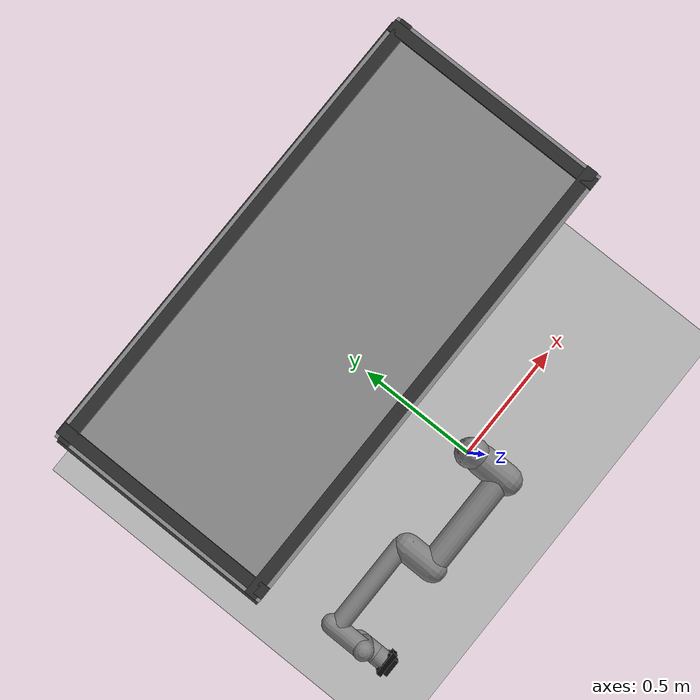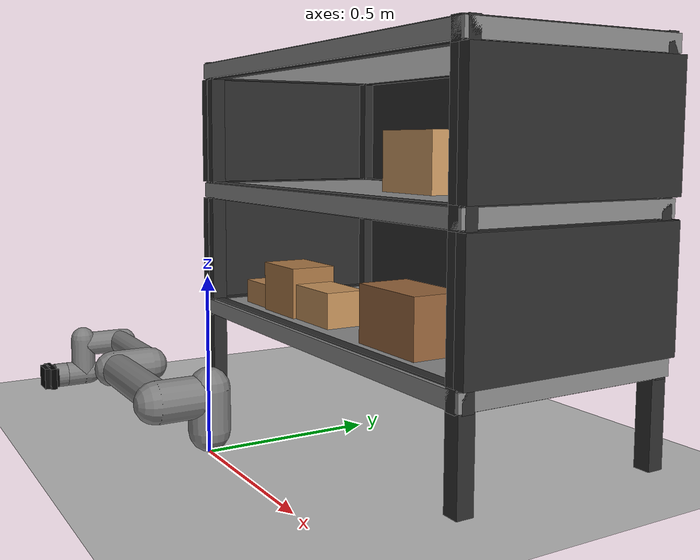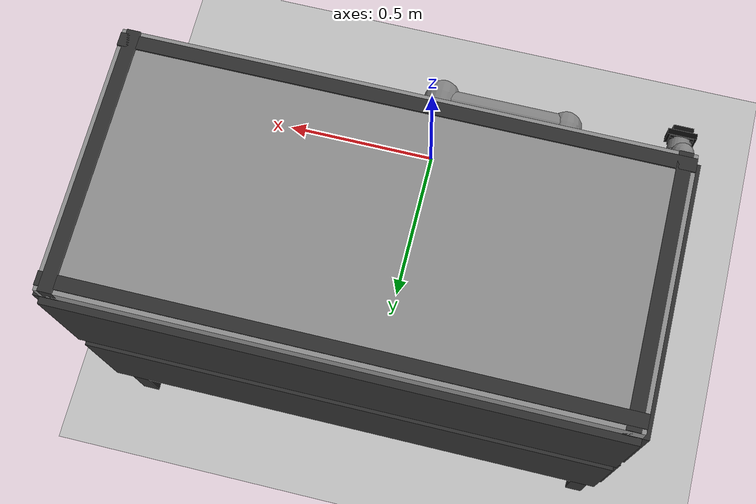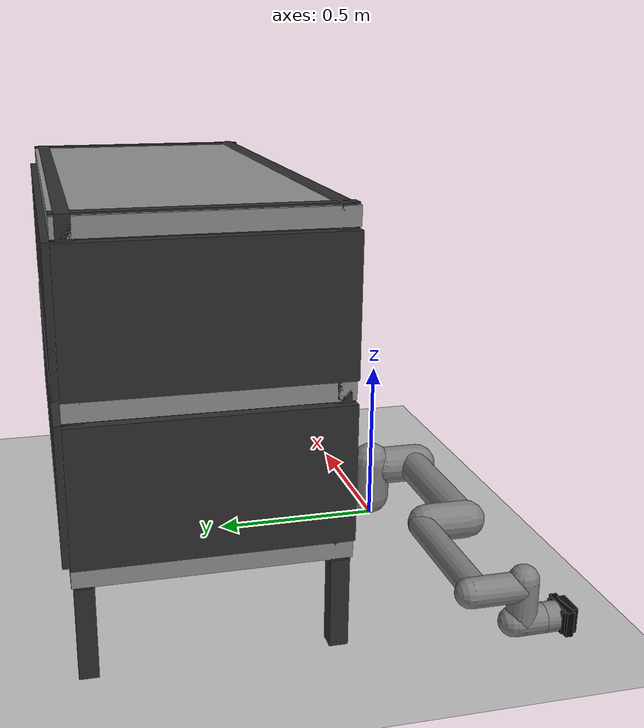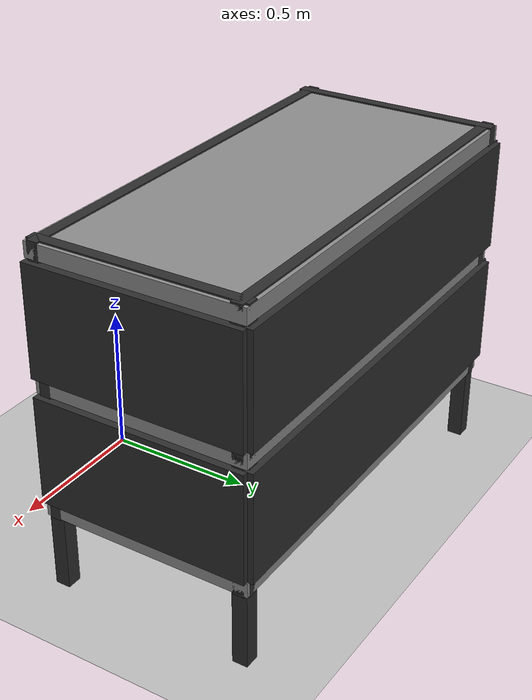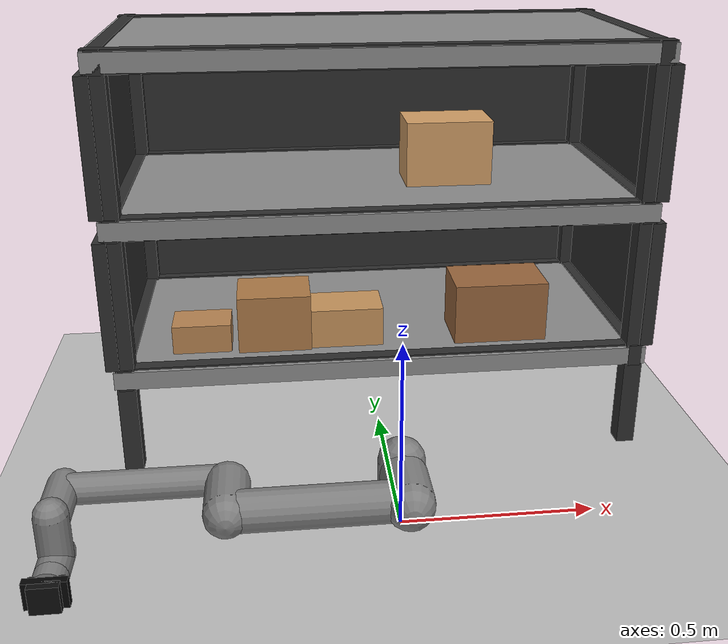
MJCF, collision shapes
<mujoco model="ur5e scene">
  <include file="ur5e.xml"/>

  <statistic center="0.3 0 0.4" extent="1.2"/>

  <option gravity="0 0 -9.81" timestep="0.002" integrator="implicit">
    <flag contact="enable"/>
  </option>

  <visual>
    <headlight diffuse="0.6 0.6 0.6"
               ambient="0.1 0.1 0.1"
               specular="0 0 0"/>
    <rgba haze="0.15 0.25 0.35 1"/>
    <global azimuth="120" elevation="-20"/>
  </visual>

  <asset>
    <texture type="skybox"
             builtin="gradient"
             rgb1="0.3 0.5 0.7"
             rgb2="0 0 0"
             width="512"
             height="3072"/>

    <texture type="2d"
             name="groundplane"
             builtin="checker"
             mark="edge"
             rgb1="0.2 0.3 0.4"
             rgb2="0.1 0.2 0.3"
             markrgb="0.8 0.8 0.8"
             width="300"
             height="300"/>

    <material name="groundplane"
              texture="groundplane"
              texuniform="true"
              texrepeat="5 5"
              reflectance="0.2"/>

    <material name="amazon_cardboard"
              rgba="0.72 0.45 0.20 1"/>

    <material name="goal_green"
              rgba="0.1 1.0 0.1 0.35"/>
  </asset>

  <default>
    <default class="pushable_box">
      <geom type="box"
            material="amazon_cardboard"
            density="250"
            friction="1.2 0.1 0.01"
            solref="0.005 1"
            solimp="0.95 0.99 0.001"
            contype="1"
            conaffinity="1"
            condim="3"/>
      <joint type="free"
             damping="0.01"/>
    </default>
  </default>

  <worldbody>
    <light pos="0 0 1.5"
           dir="0 0 -1"
           directional="true"/>

    <geom name="floor"
          size="0 0 0.05"
          type="plane"
          material="groundplane"
          contype="1"
          conaffinity="1"
          friction="1.0 0.1 0.01"/>

    <!-- Target / candidate boxes.
         These names must match BOXES in teleop_collector.py. -->

  </worldbody>
</mujoco>

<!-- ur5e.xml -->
<mujoco model="ur5e_centered_rack_with_attached_pusher">
  <compiler angle="radian" meshdir="assets" autolimits="true"/>

  <option integrator="implicitfast" gravity="0 0 -9.81"/>

  <default>
    <default class="ur5e">
      <material specular="0.5" shininess="0.25"/>
      <joint axis="0 1 0" range="-6.28319 6.28319" armature="0.1"/>
      <general gaintype="fixed" biastype="affine"
               ctrlrange="-6.2831 6.2831"
               gainprm="2000"
               biasprm="0 -2000 -400"
               forcerange="-150 150"/>

      <default class="size3">
        <default class="size3_limited">
          <joint range="-3.1415 3.1415"/>
          <general ctrlrange="-3.1415 3.1415"/>
        </default>
      </default>

      <default class="size1">
        <general gainprm="500"
                 biasprm="0 -500 -100"
                 forcerange="-28 28"/>
      </default>

      <default class="visual">
        <geom type="mesh" contype="0" conaffinity="0" group="2"/>
      </default>

      <default class="collision">
        <geom type="capsule" group="3"/>
        <default class="eef_collision">
          <geom type="cylinder"/>
        </default>
      </default>

      <site size="0.001" rgba="0.5 0.5 0.5 0.3" group="4"/>
    </default>
  </default>

  <asset>
    <!-- UR5e materials -->
    <material class="ur5e" name="black" rgba="0.033 0.033 0.033 1"/>
    <material class="ur5e" name="jointgray" rgba="0.278 0.278 0.278 1"/>
    <material class="ur5e" name="linkgray" rgba="0.82 0.82 0.82 1"/>
    <material class="ur5e" name="urblue" rgba="0.49 0.678 0.8 1"/>

    <!-- UR5e meshes -->
    <mesh file="base_0.obj"/>
    <mesh file="base_1.obj"/>
    <mesh file="shoulder_0.obj"/>
    <mesh file="shoulder_1.obj"/>
    <mesh file="shoulder_2.obj"/>
    <mesh file="upperarm_0.obj"/>
    <mesh file="upperarm_1.obj"/>
    <mesh file="upperarm_2.obj"/>
    <mesh file="upperarm_3.obj"/>
    <mesh file="forearm_0.obj"/>
    <mesh file="forearm_1.obj"/>
    <mesh file="forearm_2.obj"/>
    <mesh file="forearm_3.obj"/>
    <mesh file="wrist1_0.obj"/>
    <mesh file="wrist1_1.obj"/>
    <mesh file="wrist1_2.obj"/>
    <mesh file="wrist2_0.obj"/>
    <mesh file="wrist2_1.obj"/>
    <mesh file="wrist2_2.obj"/>
    <mesh file="wrist3.obj"/>

    <!-- Floor texture -->
    <texture name="grid" type="2d" builtin="checker"
             rgb1="0.85 0.85 0.85"
             rgb2="0.65 0.65 0.65"
             width="300"
             height="300"/>

    <material name="floor_mat" texture="grid" texrepeat="10 10"/>

    <!-- Rack materials -->
    <material name="rack_dark" rgba="0.18 0.18 0.18 1"/>
    <material name="shelf_grey" rgba="0.55 0.55 0.55 1"/>

    <!-- Box materials -->
    <material name="amazon_box_1" rgba="0.72 0.52 0.32 1"/>
    <material name="amazon_box_2" rgba="0.78 0.58 0.36 1"/>
    <material name="amazon_box_3" rgba="0.68 0.48 0.28 1"/>
    <material name="amazon_box_4" rgba="0.82 0.62 0.40 1"/>
    <material name="amazon_box_5" rgba="0.60 0.40 0.24 1"/>
  </asset>

  <worldbody>

    <!-- LIGHTING AND CAMERAS -->

    <light name="spotlight"
           mode="targetbodycom"
           target="wrist_2_link"
           pos="0 -1 2"/>

    <light name="main_light"
           pos="0 -3 5"
           dir="0 0 -1"
           diffuse="1 1 1"/>

    <camera name="front_camera"
            pos="0 -3.5 1.7"
            xyaxes="1 0 0 0 0.45 1"/>

    <camera name="top_camera"
            pos="0 1.05 3.3"
            xyaxes="1 0 0 0 1 0"/>

    <!-- Warehouse floor -->
    <geom name="warehouse_floor"
          type="plane"
          size="5 5 0.1"
          material="floor_mat"/>

          <!-- Visible goal marker for pushing task -->
    <geom name="goal_marker"
          type="sphere"
          pos="0.25 0.45 0.365"
          size="0.04"
          rgba="0 1 0 0.6"
          contype="0"
          conaffinity="0"/>

    <!-- UR5e ROBOT ARM -->

    <body name="base" quat="0 0 0 -1" childclass="ur5e">
      <inertial mass="4.0"
                pos="0 0 0"
                diaginertia="0.00443333156 0.00443333156 0.0072"/>

      <geom mesh="base_0" material="black" class="visual"/>
      <geom mesh="base_1" material="jointgray" class="visual"/>

      <body name="shoulder_link" pos="0 0 0.163">
        <inertial mass="3.7"
                  pos="0 0 0"
                  diaginertia="0.0102675 0.0102675 0.00666"/>

        <joint name="shoulder_pan_joint" class="size3" axis="0 0 1"/>

        <geom mesh="shoulder_0" material="urblue" class="visual"/>
        <geom mesh="shoulder_1" material="black" class="visual"/>
        <geom mesh="shoulder_2" material="jointgray" class="visual"/>
        <geom class="collision" size="0.06 0.06" pos="0 0 -0.04"/>

        <body name="upper_arm_link" pos="0 0.138 0" quat="1 0 1 0">
          <inertial mass="8.393"
                    pos="0 0 0.2125"
                    diaginertia="0.133886 0.133886 0.0151074"/>

          <joint name="shoulder_lift_joint" class="size3"/>

          <geom mesh="upperarm_0" material="linkgray" class="visual"/>
          <geom mesh="upperarm_1" material="black" class="visual"/>
          <geom mesh="upperarm_2" material="jointgray" class="visual"/>
          <geom mesh="upperarm_3" material="urblue" class="visual"/>
          <geom class="collision" pos="0 -0.04 0" quat="1 1 0 0" size="0.06 0.06"/>
          <geom class="collision" size="0.05 0.2" pos="0 0 0.2"/>

          <body name="forearm_link" pos="0 -0.131 0.425">
            <inertial mass="2.275"
                      pos="0 0 0.196"
                      diaginertia="0.0311796 0.0311796 0.004095"/>

            <joint name="elbow_joint" class="size3_limited"/>

            <geom mesh="forearm_0" material="urblue" class="visual"/>
            <geom mesh="forearm_1" material="linkgray" class="visual"/>
            <geom mesh="forearm_2" material="black" class="visual"/>
            <geom mesh="forearm_3" material="jointgray" class="visual"/>
            <geom class="collision" pos="0 0.08 0" quat="1 1 0 0" size="0.055 0.06"/>
            <geom class="collision" size="0.038 0.19" pos="0 0 0.2"/>

            <body name="wrist_1_link" pos="0 0 0.392" quat="1 0 1 0">
              <inertial mass="1.219"
                        pos="0 0.127 0"
                        diaginertia="0.0025599 0.0025599 0.0021942"/>

              <joint name="wrist_1_joint" class="size1"/>

              <geom mesh="wrist1_0" material="black" class="visual"/>
              <geom mesh="wrist1_1" material="urblue" class="visual"/>
              <geom mesh="wrist1_2" material="jointgray" class="visual"/>
              <geom class="collision" pos="0 0.05 0" quat="1 1 0 0" size="0.04 0.07"/>

              <body name="wrist_2_link" pos="0 0.127 0">
                <inertial mass="1.219"
                          pos="0 0 0.1"
                          diaginertia="0.0025599 0.0025599 0.0021942"/>

                <joint name="wrist_2_joint" axis="0 0 1" class="size1"/>

                <geom mesh="wrist2_0" material="black" class="visual"/>
                <geom mesh="wrist2_1" material="urblue" class="visual"/>
                <geom mesh="wrist2_2" material="jointgray" class="visual"/>
                <geom class="collision" size="0.04 0.06" pos="0 0 0.04"/>
                <geom class="collision" pos="0 0.02 0.1" quat="1 1 0 0" size="0.04 0.04"/>

                <body name="wrist_3_link" pos="0 0 0.1">
                  <inertial mass="0.1889"
                            pos="0 0.0771683 0"
                            quat="1 0 0 1"
                            diaginertia="0.000132134 9.90863e-05 9.90863e-05"/>

                  <joint name="wrist_3_joint" class="size1"/>

                  <geom material="linkgray" mesh="wrist3" class="visual"/>
                  <geom class="eef_collision"
                        pos="0 0.08 0"
                        quat="1 1 0 0"
                        size="0.04 0.02"/>

                  <!-- Attachment site -->
                  <site name="attachment_site" pos="0 0.1 0" quat="-1 1 0 0"/>

                  <!-- Attached pusher tool -->
                  <geom name="pusher_plate"
                        type="box"
                        pos="0 0.105 0"
                        size="0.040 0.010 0.030"
                        rgba="0.02 0.02 0.02 1"
                        friction="2 0.5 0.01"
                        contype="1"
                        conaffinity="1"
                        condim="3"/>

                  <geom name="pusher_tip"
                        type="box"
                        pos="0 0.115 0"
                        size="0.050 0.010 0.035"
                        rgba="0.02 0.02 0.02 1"
                        friction="2 0.5 0.01"
                        contype="1"
                        conaffinity="1"
                        condim="3" />

                  <geom name="ee_pusher_collision"
                        type="box"
                        pos="0 0.13 0"
                        size="0.035 0.012 0.035"
                        rgba="0.05 0.05 0.05 1"
                        contype="1"
                        conaffinity="1"
                        condim="3"
                        friction="2 0.5 0.01"/>

                  <site name="pusher_tip_site"
                        pos="0 0.155 0"
                        size="0.025"
                        rgba="1 0 0 1"
                        />
                </body>

              </body>
            </body>
          </body>
        </body>
      </body>
    </body>

    <!-- CENTERED SCALED OLD-STYLE WAREHOUSE RACK -->
    <!-- Changed from pos="0.45 1.30 0" to pos="0.00 1.05 0"
         so rack is centered and closer to UR5e.
    -->

    <body name="warehouse_rack" pos="0.00 0.65 0">

      <!-- Vertical posts -->
      <geom name="post_front_left"
            type="box"
            pos="-0.70 -0.32 0.55"
            size="0.025 0.025 0.55"
            material="rack_dark"/>

      <geom name="post_front_right"
            type="box"
            pos="0.70 -0.32 0.55"
            size="0.025 0.025 0.55"
            material="rack_dark"/>

      <geom name="post_back_left"
            type="box"
            pos="-0.70 0.32 0.55"
            size="0.025 0.025 0.55"
            material="rack_dark"/>

      <geom name="post_back_right"
            type="box"
            pos="0.70 0.32 0.55"
            size="0.025 0.025 0.55"
            material="rack_dark"/>

      <!-- Three shelf surfaces -->
      <geom name="shelf_surface_bottom"
            type="box"
            pos="0 0 0.28"
            size="0.73 0.35 0.025"
            material="shelf_grey"/>

      <geom name="shelf_surface_middle"
            type="box"
            pos="0 0 0.70"
            size="0.73 0.35 0.025"
            material="shelf_grey"/>

      <geom name="shelf_surface_top"
            type="box"
            pos="0 0 1.12"
            size="0.73 0.35 0.025"
            material="shelf_grey"/>

      <!-- Front beams -->
      <geom name="front_beam_bottom"
            type="box"
            pos="0 -0.32 0.28"
            size="0.73 0.018 0.030"
            material="rack_dark"/>

      <geom name="front_beam_middle"
            type="box"
            pos="0 -0.32 0.70"
            size="0.73 0.018 0.030"
            material="rack_dark"/>

      <geom name="front_beam_top"
            type="box"
            pos="0 -0.32 1.12"
            size="0.73 0.018 0.030"
            material="rack_dark"/>

      <!-- Back beams -->
      <geom name="back_beam_bottom"
            type="box"
            pos="0 0.32 0.28"
            size="0.73 0.018 0.030"
            material="rack_dark"/>

      <geom name="back_beam_middle"
            type="box"
            pos="0 0.32 0.70"
            size="0.73 0.018 0.030"
            material="rack_dark"/>

      <geom name="back_beam_top"
            type="box"
            pos="0 0.32 1.12"
            size="0.73 0.018 0.030"
            material="rack_dark"/>

      <!-- Left side beams -->
      <geom name="left_side_beam_bottom"
            type="box"
            pos="-0.70 0 0.28"
            size="0.018 0.35 0.030"
            material="rack_dark"/>

      <geom name="left_side_beam_middle"
            type="box"
            pos="-0.70 0 0.70"
            size="0.018 0.35 0.030"
            material="rack_dark"/>

      <geom name="left_side_beam_top"
            type="box"
            pos="-0.70 0 1.12"
            size="0.018 0.35 0.030"
            material="rack_dark"/>

      <!-- Right side beams -->
      <geom name="right_side_beam_bottom"
            type="box"
            pos="0.70 0 0.28"
            size="0.018 0.35 0.030"
            material="rack_dark"/>

      <geom name="right_side_beam_middle"
            type="box"
            pos="0.70 0 0.70"
            size="0.018 0.35 0.030"
            material="rack_dark"/>

      <geom name="right_side_beam_top"
            type="box"
            pos="0.70 0 1.12"
            size="0.018 0.35 0.030"
            material="rack_dark"/>

      <!-- Solid back walls / stoppers -->
      <geom name="back_wall_lower"
            type="box"
            pos="0 0.35 0.49"
            size="0.73 0.018 0.18"
            material="rack_dark"/>

      <geom name="back_wall_upper"
            type="box"
            pos="0 0.35 0.91"
            size="0.73 0.018 0.18"
            material="rack_dark"/>

      <!-- Left side walls -->
      <geom name="left_wall_lower"
            type="box"
            pos="-0.73 0 0.49"
            size="0.018 0.35 0.18"
            material="rack_dark"/>

      <geom name="left_wall_upper"
            type="box"
            pos="-0.73 0 0.91"
            size="0.018 0.35 0.18"
            material="rack_dark"/>

      <!-- Right side walls -->
      <geom name="right_wall_lower"
            type="box"
            pos="0.73 0 0.49"
            size="0.018 0.35 0.18"
            material="rack_dark"/>

      <geom name="right_wall_upper"
            type="box"
            pos="0.73 0 0.91"
            size="0.018 0.35 0.18"
            material="rack_dark"/>

    </body>

    <!-- FIVE MOVABLE BOXES -->
    <!-- Updated positions so boxes move with the centered rack.
    -->

    <!-- Box 1: lower shelf, left -->
    <body name="amazon_box_small_A1" pos="-0.50 0.45 0.346">
      <freejoint/>
      <geom name="amazon_box_small_A1_geom"
            type="box"
            size="0.080 0.055 0.040"
            mass="0.25"
            material="amazon_box_1"
            friction="2 0.5 0.01"
            contype="1"
            conaffinity="1"
            condim="3"/>
    </body>

    <!-- Box 2: lower shelf, middle -->
    <body name="amazon_box_medium_A4" pos="-0.10 0.45 0.365">
      <freejoint/>
      <geom name="amazon_box_medium_A4_geom"
            type="box"
            size="0.100 0.065 0.055"
            mass="0.35"
            material="amazon_box_2"
            friction="2 0.5 0.01"
            contype="1"
            conaffinity="1"
            condim="3"/>
    </body>

    <!-- Box 3: lower shelf, right -->
    <body name="amazon_box_extra_large_2BB" pos="0.33 0.45 0.395">
      <freejoint/>
      <geom name="amazon_box_extra_large_2BB_geom"
            type="box"
            size="0.130 0.080 0.085"
            mass="0.55"
            material="amazon_box_5"
            friction="2 0.5 0.01"
            contype="1"
            conaffinity="1"
            condim="3"/>
    </body>

    <!-- Box 4: upper shelf, left -->
    <body name="amazon_box_medium_tall_1A9" pos="-0.30 0.45 0.390">
      <freejoint/>
      <geom name="amazon_box_medium_tall_1A9_geom"
            type="box"
            size="0.100 0.075 0.080"
            mass="0.45"
            material="amazon_box_3"
            friction="2 0.5 0.01"
            contype="1"
            conaffinity="1"
            condim="3"/>
    </body>

    <!-- Box 5: upper shelf, right -->
    <body name="amazon_box_large_B0" pos="0.20 0.60 0.815">
      <freejoint/>
      <geom name="amazon_box_large_B0_geom"
            type="box"
            size="0.120 0.075 0.090"
            mass="0.50"
            material="amazon_box_4"
            friction="2 0.5 0.01"
            contype="1"
            conaffinity="1"
            condim="3"/>
    </body>

  </worldbody>

  <!-- UR5e ACTUATORS -->

  <actuator>
    <general class="size3" name="shoulder_pan" joint="shoulder_pan_joint"/>
    <general class="size3" name="shoulder_lift" joint="shoulder_lift_joint"/>
    <general class="size3_limited" name="elbow" joint="elbow_joint"/>
    <general class="size1" name="wrist_1" joint="wrist_1_joint"/>
    <general class="size1" name="wrist_2" joint="wrist_2_joint"/>
    <general class="size1" name="wrist_3" joint="wrist_3_joint"/>
  </actuator>

  <!-- Home pose -->
  <keyframe>
    <key name="home"
         qpos="0 -1.5708 1.5708 -1.5708 -1.5708 0"
         ctrl="0 -1.5708 1.5708 -1.5708 -1.5708 0"/>
  </keyframe>

</mujoco>
